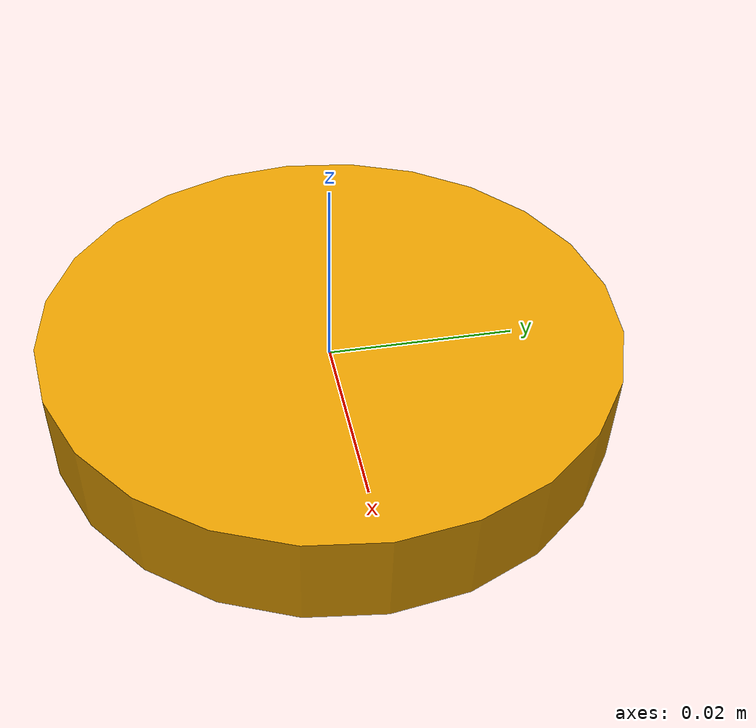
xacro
<?xml version="1.0" ?>
<robot xmlns:xacro="http://www.ros.org/wiki/xacro" name="scorbot_model">

  <xacro:macro name="defaultInertial" params="mass">
    <inertial>
      <mass value="${mass}" />
      <inertia
        ixx="1.0"
        ixy="0.0"
        ixz="0.0"
        iyy="1.0"
        iyz="0.0"
        izz="1.0" />
    </inertial>
  </xacro:macro>

  <link
    name="tower_base">
    <inertial>
      <origin
        xyz="0.3 0 0.005"
        rpy="0 0 0" />
      <mass
        value="0.007491" />
      <inertia
        ixx="1.655E-07"
        ixy="-2.9951E-20"
        ixz="-3.496E-19"
        iyy="3.5223E-06"
        iyz="1.4029E-21"
        izz="3.563E-06" />
    </inertial>
    <visual>
      <geometry>
          <cylinder length="0.01" radius="0.03" />
          <origin
            xyz="0.3 0 0.05"
            rpy="0 0 0" />
      </geometry>
      <collision>
          <cylinder length="0.01" radius="0.03" />
          <origin
            xyz="0.3 0 0.05"
            rpy="0 0 0" />
      </collision>
    </visual>
    <xacro:defaultInertial mass="1" />
  </link>

  <!-- Gazebo plugin for ROS Control -->
  <gazebo>
    <plugin name="gazebo_ros_control" filename="libgazebo_ros_control.so">
      <robotNamespace>/scorbot</robotNamespace>
    </plugin>
  </gazebo>
</robot>
